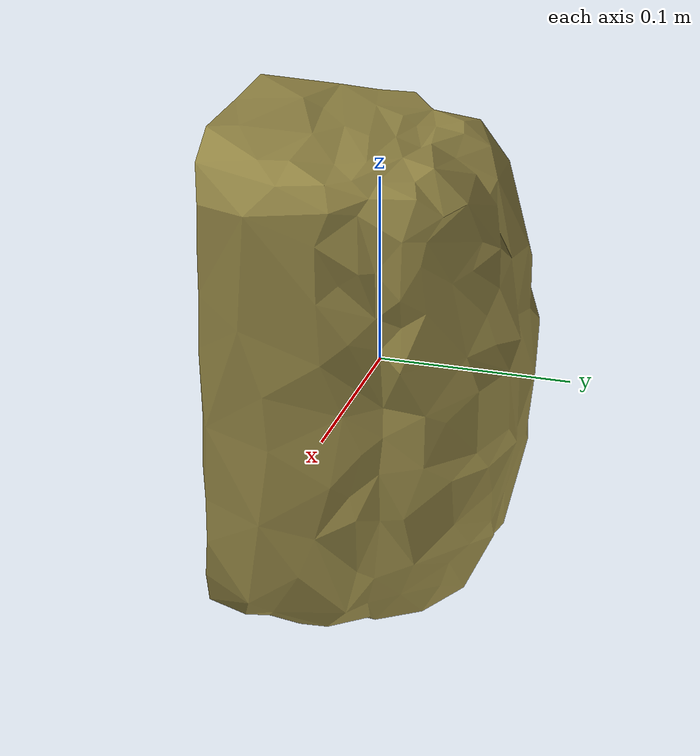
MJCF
<mujoco model="Bread_10">
  <compiler autolimits="true" boundmass="0.01" angle="radian"/>
  <default>
    <default class="/">
      <default class="__VISUAL_MJT__">
        <geom contype="0" conaffinity="0" group="0"/>
      </default>
      <default class="__STRUCTURAL_MJT__">
        <geom contype="8" conaffinity="15" group="4" friction="0.90000000000000002 0.90000000000000002 0.001" solref="0.025000000000000001 1" solimp="0.998 0.998 0.001"/>
      </default>
      <default class="__DYNAMIC_MJT__">
        <geom contype="1" conaffinity="15" group="4" friction="0.90000000000000002 0.90000000000000002 0.001" solref="0.025000000000000001 1" solimp="0.998 0.998 0.001"/>
      </default>
    </default>
  </default>
  <asset>
    <texture name="Bread4_Mat3" type="2d" file="Bread4_AlbedoTransparency.png"/>
    <material name="material_Bread4_Mat3" class="/" texture="Bread4_Mat3" specular="0.5" shininess="0.5" rgba="0.77941179999999999 0.73704219999999998 0.39543689999999998 1"/>
    <mesh name="Bread_10_bread4_c_mesh" class="/" file="Bread_10_bread4_c_mesh/Bread_10_bread4_c_mesh.obj" scale="1 1 1"/>
  </asset>
  <worldbody>
    <body name="Bread_10">
      <joint name="Bread_10_free" class="/" type="free" pos="0 0 0" axis="0 0 1" stiffness="0" range="0 0" armature="0" damping="0.10000000000000001" frictionloss="0"/>
      <body name="Bread_10_bread4_c_mesh" pos="-0 -0.00415 0" quat="1 0 0 0">
        <geom name="Bread_10_bread4_c_mesh" class="__VISUAL_MJT__" type="mesh" material="material_Bread4_Mat3" shellinertia="false" mesh="Bread_10_bread4_c_mesh"/>
        <geom name="Bread_10_PrimitiveCollider_0" class="__DYNAMIC_MJT__" type="box" size="0.082844346761703491 0.081279277801513672 0.13703520596027374" rgba="0 1 0 1" pos="-0 0.0041451454162597656 0" quat="1 0 0 0"/>
      </body>
    </body>
  </worldbody>
</mujoco>
